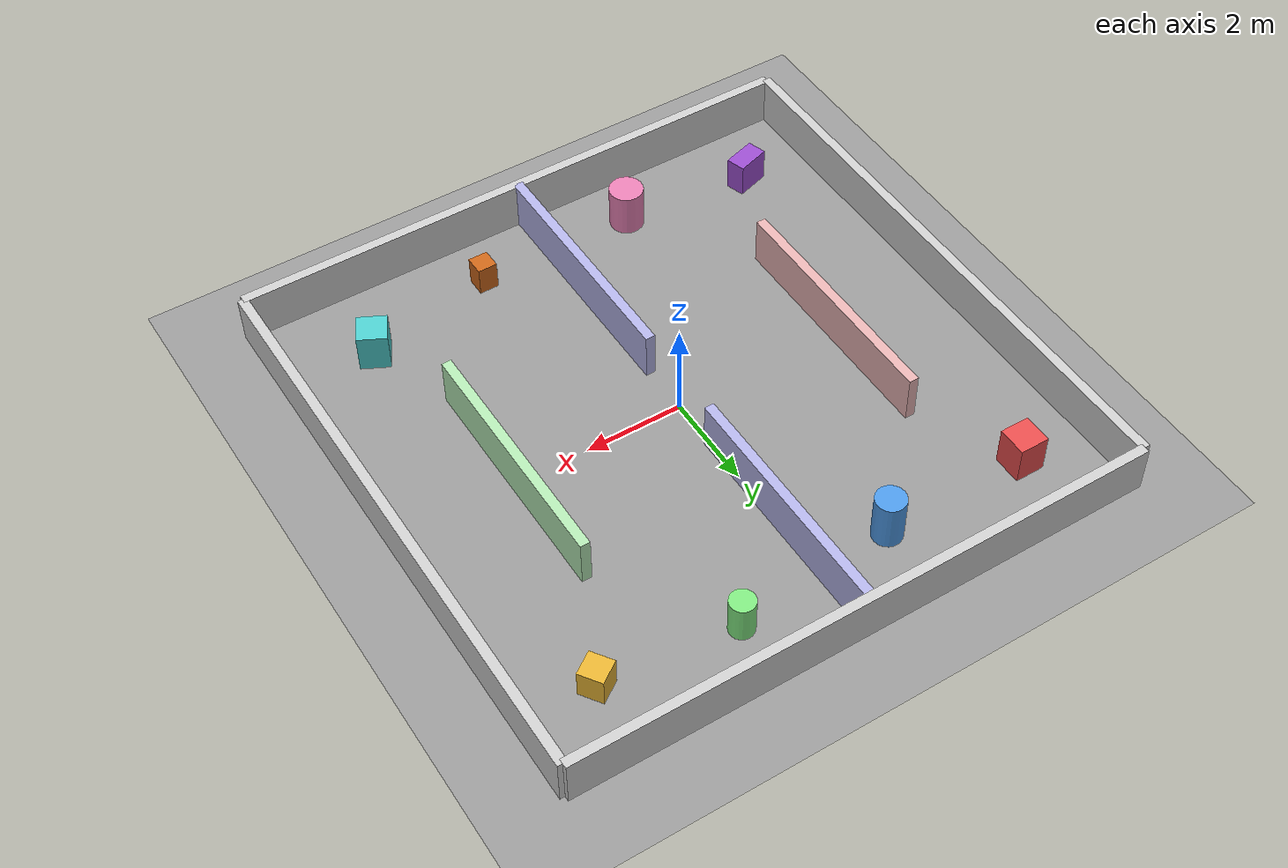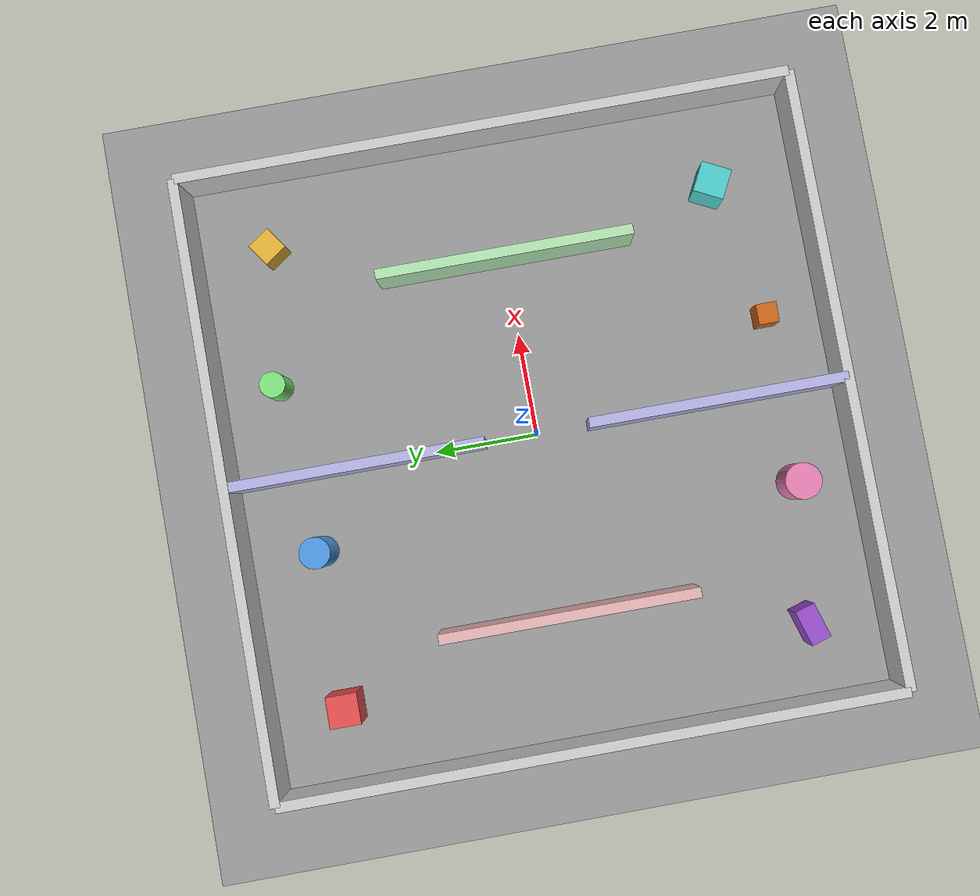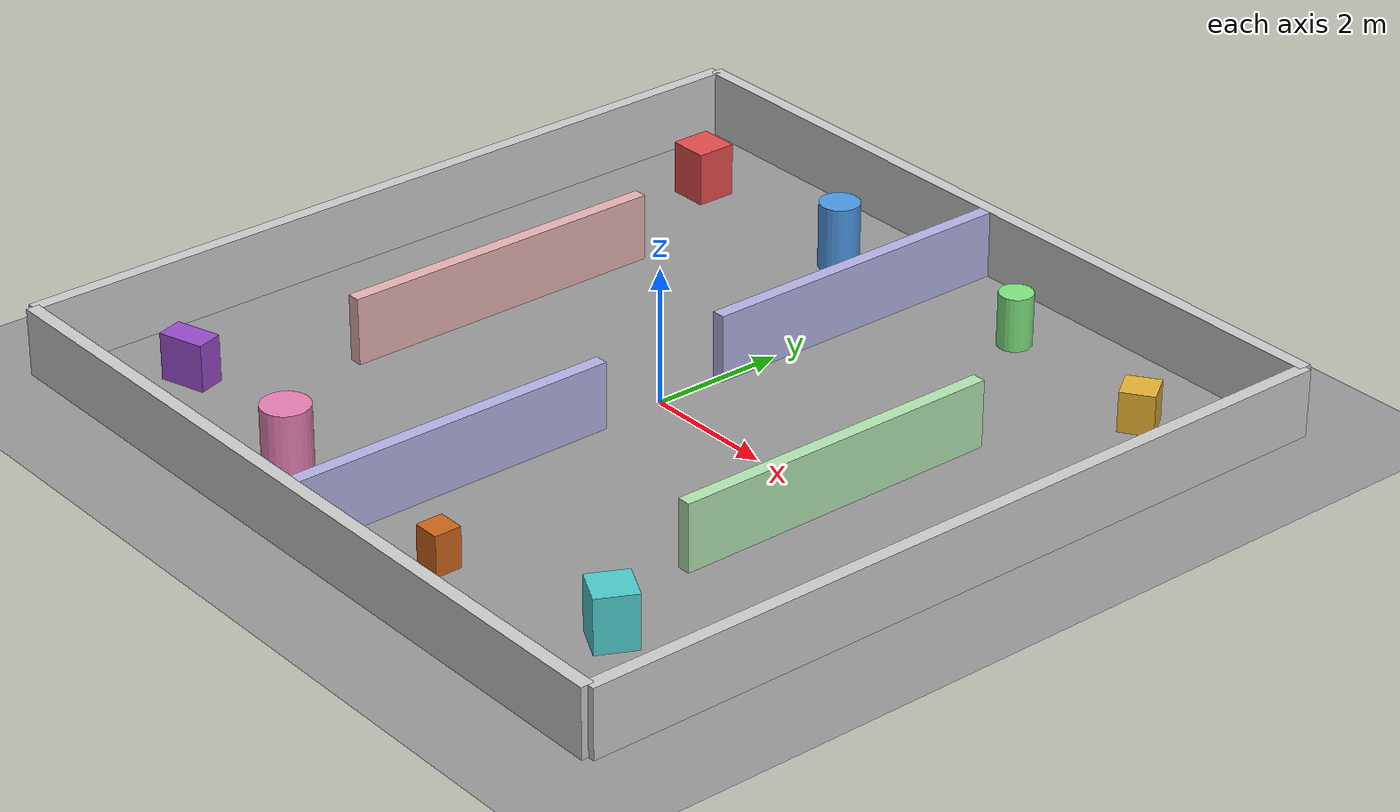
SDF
<?xml version="1.0"?>
<sdf version="1.9">
  <world name="multi_room_world">

    <physics name="1ms" type="ignored">
      <max_step_size>0.001</max_step_size>
      <real_time_factor>1.0</real_time_factor>
    </physics>

    <plugin filename="gz-sim-physics-system" name="gz::sim::systems::Physics"></plugin>
    <plugin filename="gz-sim-user-commands-system" name="gz::sim::systems::UserCommands"></plugin>
    <plugin filename="gz-sim-scene-broadcaster-system" name="gz::sim::systems::SceneBroadcaster"></plugin>
    <plugin filename="gz-sim-sensors-system" name="gz::sim::systems::Sensors">
      <render_engine>ogre2</render_engine>
    </plugin>
    <plugin filename="gz-sim-contact-system" name="gz::sim::systems::Contact"></plugin>

    <light type="directional" name="sun">
      <cast_shadows>true</cast_shadows>
      <pose>0 0 10 0 0 0</pose>
      <diffuse>0.8 0.8 0.8 1</diffuse>
      <specular>0.2 0.2 0.2 1</specular>
      <direction>-0.5 0.1 -0.9</direction>
    </light>

    <model name="ground_plane">
      <static>true</static>
      <link name="link">
        <collision name="collision">
          <geometry><plane><normal>0 0 1</normal><size>30 30</size></plane></geometry>
        </collision>
        <visual name="visual">
          <geometry><plane><normal>0 0 1</normal><size>30 30</size></plane></geometry>
          <material><ambient>0.6 0.6 0.6 1</ambient><diffuse>0.6 0.6 0.6 1</diffuse></material>
        </visual>
      </link>
    </model>

    <!-- ============ OUTER BOUNDARY WALLS ============ -->
    <model name="outer_wall_1">
      <static>true</static>
      <pose>0 6 0.5 0 0 0</pose>
      <link name="link">
        <collision name="collision"><geometry><box><size>12 0.2 1</size></box></geometry></collision>
        <visual name="visual"><geometry><box><size>12 0.2 1</size></box></geometry>
          <material><ambient>0.8 0.8 0.8 1</ambient><diffuse>0.8 0.8 0.8 1</diffuse></material></visual>
      </link>
    </model>

    <model name="outer_wall_2">
      <static>true</static>
      <pose>0 -6 0.5 0 0 0</pose>
      <link name="link">
        <collision name="collision"><geometry><box><size>12 0.2 1</size></box></geometry></collision>
        <visual name="visual"><geometry><box><size>12 0.2 1</size></box></geometry>
          <material><ambient>0.8 0.8 0.8 1</ambient><diffuse>0.8 0.8 0.8 1</diffuse></material></visual>
      </link>
    </model>

    <model name="outer_wall_3">
      <static>true</static>
      <pose>6 0 0.5 0 0 1.5708</pose>
      <link name="link">
        <collision name="collision"><geometry><box><size>12 0.2 1</size></box></geometry></collision>
        <visual name="visual"><geometry><box><size>12 0.2 1</size></box></geometry>
          <material><ambient>0.8 0.8 0.8 1</ambient><diffuse>0.8 0.8 0.8 1</diffuse></material></visual>
      </link>
    </model>

    <model name="outer_wall_4">
      <static>true</static>
      <pose>-6 0 0.5 0 0 1.5708</pose>
      <link name="link">
        <collision name="collision"><geometry><box><size>12 0.2 1</size></box></geometry></collision>
        <visual name="visual"><geometry><box><size>12 0.2 1</size></box></geometry>
          <material><ambient>0.8 0.8 0.8 1</ambient><diffuse>0.8 0.8 0.8 1</diffuse></material></visual>
      </link>
    </model>

    <!-- ============ INTERIOR WALL — splits building into left/right halves, with doorway gap ============ -->
    <model name="divider_wall_vertical_top">
      <static>true</static>
      <pose>0 3.5 0.5 0 0 0</pose>
      <link name="link">
        <collision name="collision"><geometry><box><size>0.2 5 1</size></box></geometry></collision>
        <visual name="visual"><geometry><box><size>0.2 5 1</size></box></geometry>
          <material><ambient>0.7 0.7 0.9 1</ambient><diffuse>0.7 0.7 0.9 1</diffuse></material></visual>
      </link>
    </model>

    <model name="divider_wall_vertical_bottom">
      <static>true</static>
      <pose>0 -3.5 0.5 0 0 0</pose>
      <link name="link">
        <collision name="collision"><geometry><box><size>0.2 5 1</size></box></geometry></collision>
        <visual name="visual"><geometry><box><size>0.2 5 1</size></box></geometry>
          <material><ambient>0.7 0.7 0.9 1</ambient><diffuse>0.7 0.7 0.9 1</diffuse></material></visual>
      </link>
    </model>
    <!-- gap between y=1 and y=-1 acts as doorway between left/right halves -->

    <!-- ============ HORIZONTAL WALL — splits right half into two rooms (top-right / bottom-right) ============ -->
    <model name="divider_wall_horizontal_right">
      <static>true</static>
      <pose>3.5 0 0.5 0 0 1.5708</pose>
      <link name="link">
        <collision name="collision"><geometry><box><size>5 0.2 1</size></box></geometry></collision>
        <visual name="visual"><geometry><box><size>5 0.2 1</size></box></geometry>
          <material><ambient>0.7 0.9 0.7 1</ambient><diffuse>0.7 0.9 0.7 1</diffuse></material></visual>
      </link>
    </model>

    <!-- ============ HORIZONTAL WALL — splits left half into two rooms (top-left / bottom-left) ============ -->
    <model name="divider_wall_horizontal_left">
      <static>true</static>
      <pose>-3.5 0 0.5 0 0 1.5708</pose>
      <link name="link">
        <collision name="collision"><geometry><box><size>5 0.2 1</size></box></geometry></collision>
        <visual name="visual"><geometry><box><size>5 0.2 1</size></box></geometry>
          <material><ambient>0.9 0.7 0.7 1</ambient><diffuse>0.9 0.7 0.7 1</diffuse></material></visual>
      </link>
    </model>

    <!-- ============ OBJECTS: boxes, cylinders scattered in each room ============ -->

    <model name="box_1">
      <static>true</static>
      <pose>-4.5 4.5 0.4 0 0 0</pose>
      <link name="link">
        <collision name="collision"><geometry><box><size>0.6 0.6 0.8</size></box></geometry></collision>
        <visual name="visual"><geometry><box><size>0.6 0.6 0.8</size></box></geometry>
          <material><ambient>0.9 0.3 0.3 1</ambient><diffuse>0.9 0.3 0.3 1</diffuse></material></visual>
      </link>
    </model>

    <model name="cylinder_1">
      <static>true</static>
      <pose>-1.5 4.5 0.5 0 0 0</pose>
      <link name="link">
        <collision name="collision"><geometry><cylinder><radius>0.3</radius><length>1.0</length></cylinder></geometry></collision>
        <visual name="visual"><geometry><cylinder><radius>0.3</radius><length>1.0</length></cylinder></geometry>
          <material><ambient>0.3 0.6 0.9 1</ambient><diffuse>0.3 0.6 0.9 1</diffuse></material></visual>
      </link>
    </model>

    <model name="box_2">
      <static>true</static>
      <pose>4.5 4.5 0.3 0 0 0.6</pose>
      <link name="link">
        <collision name="collision"><geometry><box><size>0.5 0.5 0.6</size></box></geometry></collision>
        <visual name="visual"><geometry><box><size>0.5 0.5 0.6</size></box></geometry>
          <material><ambient>0.9 0.7 0.2 1</ambient><diffuse>0.9 0.7 0.2 1</diffuse></material></visual>
      </link>
    </model>

    <model name="cylinder_2">
      <static>true</static>
      <pose>1.8 4.8 0.4 0 0 0</pose>
      <link name="link">
        <collision name="collision"><geometry><cylinder><radius>0.25</radius><length>0.8</length></cylinder></geometry></collision>
        <visual name="visual"><geometry><cylinder><radius>0.25</radius><length>0.8</length></cylinder></geometry>
          <material><ambient>0.5 0.9 0.5 1</ambient><diffuse>0.5 0.9 0.5 1</diffuse></material></visual>
      </link>
    </model>

    <model name="box_3">
      <static>true</static>
      <pose>-4.5 -4.5 0.35 0 0 0.3</pose>
      <link name="link">
        <collision name="collision"><geometry><box><size>0.7 0.4 0.7</size></box></geometry></collision>
        <visual name="visual"><geometry><box><size>0.7 0.4 0.7</size></box></geometry>
          <material><ambient>0.6 0.3 0.8 1</ambient><diffuse>0.6 0.3 0.8 1</diffuse></material></visual>
      </link>
    </model>

    <model name="cylinder_3">
      <static>true</static>
      <pose>-1.8 -4.8 0.45 0 0 0</pose>
      <link name="link">
        <collision name="collision"><geometry><cylinder><radius>0.35</radius><length>0.9</length></cylinder></geometry></collision>
        <visual name="visual"><geometry><cylinder><radius>0.35</radius><length>0.9</length></cylinder></geometry>
          <material><ambient>0.9 0.5 0.7 1</ambient><diffuse>0.9 0.5 0.7 1</diffuse></material></visual>
      </link>
    </model>

    <model name="box_4">
      <static>true</static>
      <pose>4.2 -4.2 0.4 0 0 1.1</pose>
      <link name="link">
        <collision name="collision"><geometry><box><size>0.6 0.6 0.8</size></box></geometry></collision>
        <visual name="visual"><geometry><box><size>0.6 0.6 0.8</size></box></geometry>
          <material><ambient>0.3 0.8 0.8 1</ambient><diffuse>0.3 0.8 0.8 1</diffuse></material></visual>
      </link>
    </model>

    <model name="box_5">
      <static>true</static>
      <pose>1.5 -4.8 0.3 0 0 0</pose>
      <link name="link">
        <collision name="collision"><geometry><box><size>0.4 0.4 0.6</size></box></geometry></collision>
        <visual name="visual"><geometry><box><size>0.4 0.4 0.6</size></box></geometry>
          <material><ambient>0.8 0.4 0.1 1</ambient><diffuse>0.8 0.4 0.1 1</diffuse></material></visual>
      </link>
    </model>

  </world>
</sdf>
